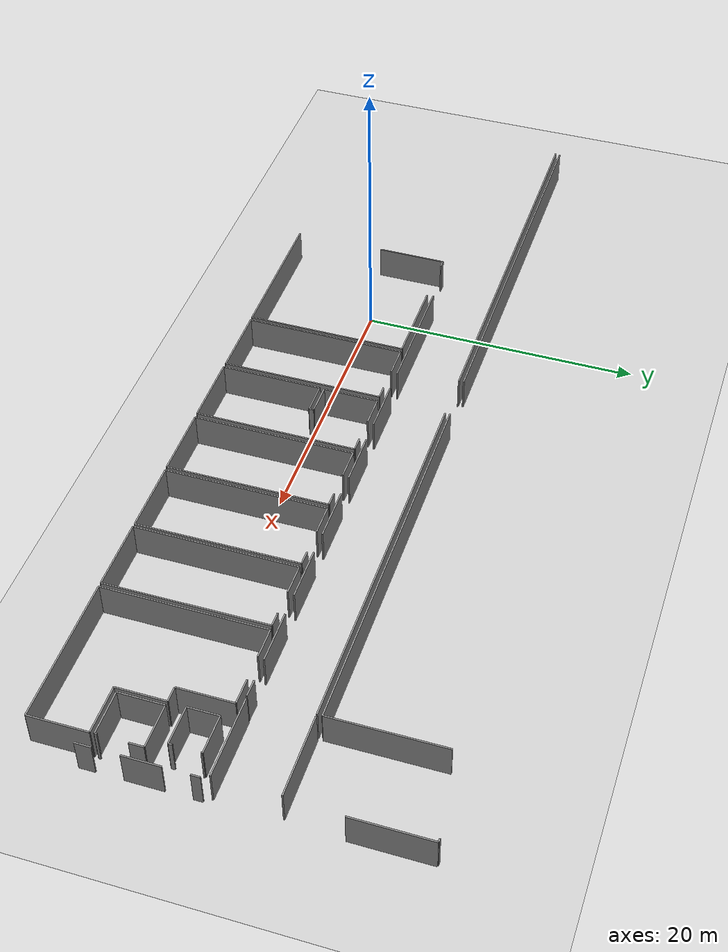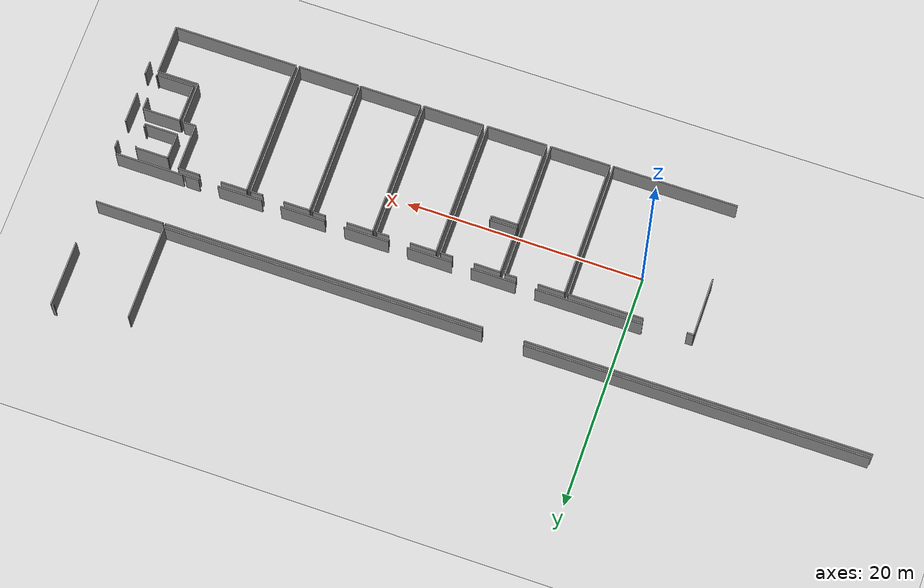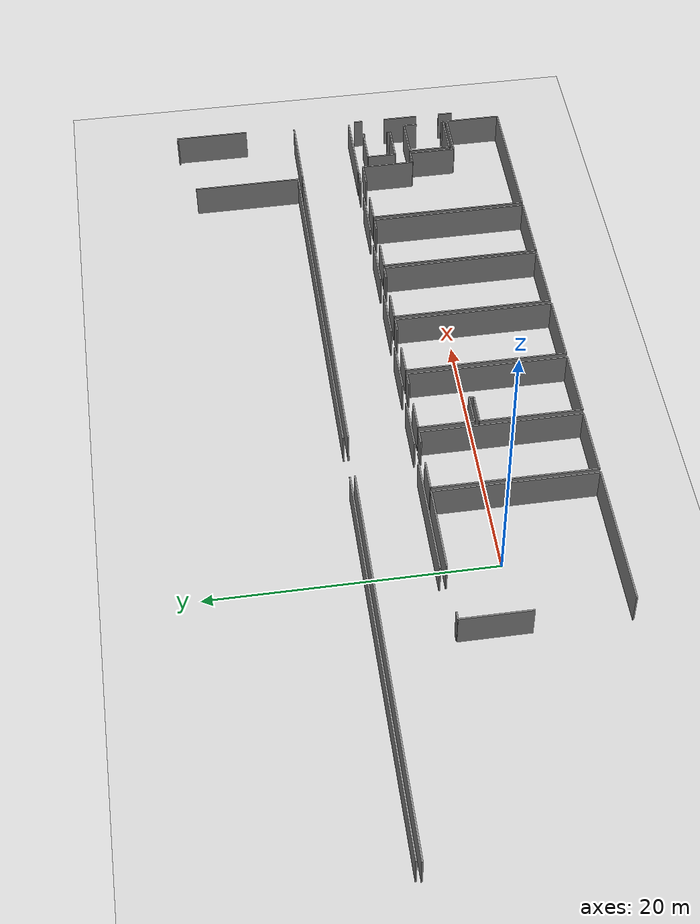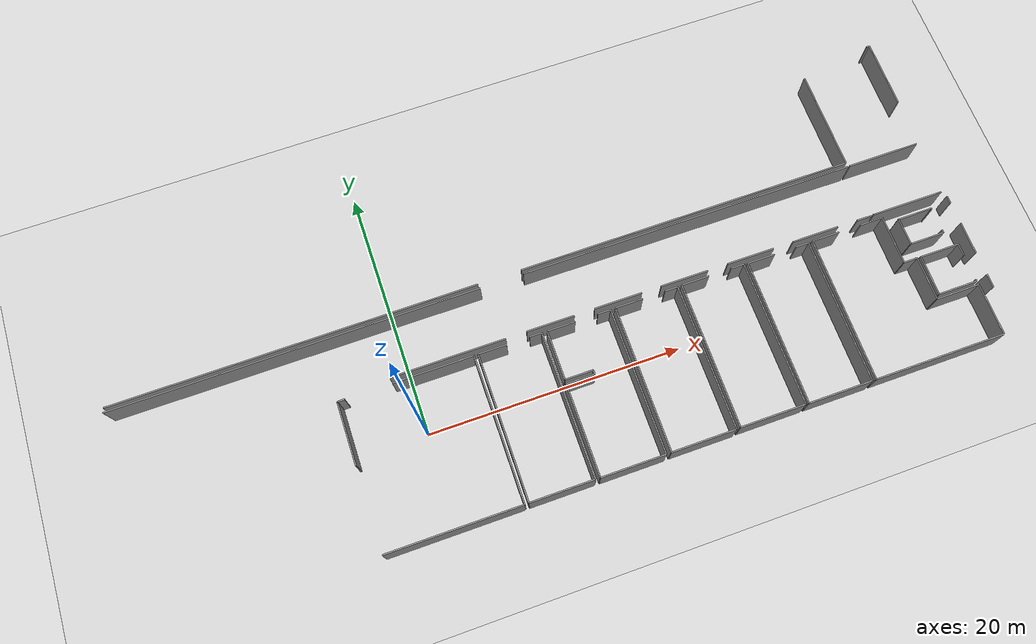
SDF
<sdf version="1.6">
 <world name="default">
  <model name="ground_plane">
   <static>1</static>
   <link name="link">
    <collision name="collision">
     <geometry><plane><normal>0 0 1</normal><size>100 100</size></plane></geometry>
     <surface><friction><ode><mu>100</mu><mu2>50</mu2></ode></friction></surface>
    </collision>
    <visual name="visual">
     <cast_shadows>0</cast_shadows>
     <geometry><plane><normal>0 0 1</normal><size>100 100</size></plane></geometry>
     <material>
      <script><uri>file://media/materials/scripts/gazebo.material</uri><name>Gazebo/Grey</name></script>
     </material>
    </visual>
   </link>
  </model>
  <model name="50037764_PLAN1">
   <static>1</static>
   <link name="Wall_271">
    <collision name="Wall_271_Collision">
     <geometry><box><size>26.9762062128 0.1 2.5</size></box></geometry>
     <pose>13.4881031064 0 1.25 0 0 0</pose>
    </collision>
    <visual name="Wall_271_Visual">
     <pose>13.4881031064 0 1.25 0 0 0</pose>
     <geometry><box><size>26.9762062128 0.1 2.5</size></box></geometry>
     <material>
      <script><uri>file://media/materials/scripts/gazebo.material</uri><name>Gazebo/Grey</name></script>
      <ambient>1 1 1 1</ambient>
     </material>
    </visual>
    <pose>172.627230668 -11.983273171 0 0 0 3.14159265359</pose>
   </link>
   <link name="Wall_272">
    <collision name="Wall_272_Collision">
     <geometry><box><size>28.8553053028 0.1 2.5</size></box></geometry>
     <pose>14.4276526514 0 1.25 0 0 0</pose>
    </collision>
    <visual name="Wall_272_Visual">
     <pose>14.4276526514 0 1.25 0 0 0</pose>
     <geometry><box><size>28.8553053028 0.1 2.5</size></box></geometry>
     <material>
      <script><uri>file://media/materials/scripts/gazebo.material</uri><name>Gazebo/Grey</name></script>
      <ambient>1 1 1 1</ambient>
     </material>
    </visual>
    <pose>142.20219635 -11.983273171 0 0 0 3.14159265359</pose>
   </link>
   <link name="Wall_275">
    <collision name="Wall_275_Collision">
     <geometry><box><size>9.0111342722 0.1 2.5</size></box></geometry>
     <pose>4.5055671361 0 1.25 0 0 0</pose>
    </collision>
    <visual name="Wall_275_Visual">
     <pose>4.5055671361 0 1.25 0 0 0</pose>
     <geometry><box><size>9.0111342722 0.1 2.5</size></box></geometry>
     <material>
      <script><uri>file://media/materials/scripts/gazebo.material</uri><name>Gazebo/Grey</name></script>
      <ambient>1 1 1 1</ambient>
     </material>
    </visual>
    <pose>133.75819818 -16.4093243175 0 0 0 0.0</pose>
   </link>
   <link name="Wall_276">
    <collision name="Wall_276_Collision">
     <geometry><box><size>3.78107682139 0.1 2.5</size></box></geometry>
     <pose>1.8905384107 0 1.25 0 0 0</pose>
    </collision>
    <visual name="Wall_276_Visual">
     <pose>1.8905384107 0 1.25 0 0 0</pose>
     <geometry><box><size>3.78107682139 0.1 2.5</size></box></geometry>
     <material>
      <script><uri>file://media/materials/scripts/gazebo.material</uri><name>Gazebo/Grey</name></script>
      <ambient>1 1 1 1</ambient>
     </material>
    </visual>
    <pose>144.399816971 -16.4093243175 0 0 0 0.0</pose>
   </link>
   <link name="Wall_277">
    <collision name="Wall_277_Collision">
     <geometry><box><size>3.78463572119 0.1 2.5</size></box></geometry>
     <pose>1.89231786059 0 1.25 0 0 0</pose>
    </collision>
    <visual name="Wall_277_Visual">
     <pose>1.89231786059 0 1.25 0 0 0</pose>
     <geometry><box><size>3.78463572119 0.1 2.5</size></box></geometry>
     <material>
      <script><uri>file://media/materials/scripts/gazebo.material</uri><name>Gazebo/Grey</name></script>
      <ambient>1 1 1 1</ambient>
     </material>
    </visual>
    <pose>149.805531547 -16.4093243175 0 0 0 0.0</pose>
   </link>
   <link name="Wall_278">
    <collision name="Wall_278_Collision">
     <geometry><box><size>3.79404138492 0.1 2.5</size></box></geometry>
     <pose>1.89702069246 0 1.25 0 0 0</pose>
    </collision>
    <visual name="Wall_278_Visual">
     <pose>1.89702069246 0 1.25 0 0 0</pose>
     <geometry><box><size>3.79404138492 0.1 2.5</size></box></geometry>
     <material>
      <script><uri>file://media/materials/scripts/gazebo.material</uri><name>Gazebo/Grey</name></script>
      <ambient>1 1 1 1</ambient>
     </material>
    </visual>
    <pose>155.166759876 -16.4093243175 0 0 0 0.0</pose>
   </link>
   <link name="Wall_279">
    <collision name="Wall_279_Collision">
     <geometry><box><size>3.78438151406 0.1 2.5</size></box></geometry>
     <pose>1.89219075703 0 1.25 0 0 0</pose>
    </collision>
    <visual name="Wall_279_Visual">
     <pose>1.89219075703 0 1.25 0 0 0</pose>
     <geometry><box><size>3.78438151406 0.1 2.5</size></box></geometry>
     <material>
      <script><uri>file://media/materials/scripts/gazebo.material</uri><name>Gazebo/Grey</name></script>
      <ambient>1 1 1 1</ambient>
     </material>
    </visual>
    <pose>160.60450455 -16.4093243175 0 0 0 0.0</pose>
   </link>
   <link name="Wall_280">
    <collision name="Wall_280_Collision">
     <geometry><box><size>3.76963750064 0.1 2.5</size></box></geometry>
     <pose>1.88481875032 0 1.25 0 0 0</pose>
    </collision>
    <visual name="Wall_280_Visual">
     <pose>1.88481875032 0 1.25 0 0 0</pose>
     <geometry><box><size>3.76963750064 0.1 2.5</size></box></geometry>
     <material>
      <script><uri>file://media/materials/scripts/gazebo.material</uri><name>Gazebo/Grey</name></script>
      <ambient>1 1 1 1</ambient>
     </material>
    </visual>
    <pose>166.000305049 -16.4093243175 0 0 0 0.0</pose>
   </link>
   <link name="Wall_281">
    <collision name="Wall_281_Collision">
     <geometry><box><size>1.20924421507 0.1 2.5</size></box></geometry>
     <pose>0.604622107536 0 1.25 0 0 0</pose>
    </collision>
    <visual name="Wall_281_Visual">
     <pose>0.604622107536 0 1.25 0 0 0</pose>
     <geometry><box><size>1.20924421507 0.1 2.5</size></box></geometry>
     <material>
      <script><uri>file://media/materials/scripts/gazebo.material</uri><name>Gazebo/Grey</name></script>
      <ambient>1 1 1 1</ambient>
     </material>
    </visual>
    <pose>171.418221567 -16.4093243175 0 0 0 -0.0197198992594</pose>
   </link>
   <link name="Wall_282">
    <collision name="Wall_282_Collision">
     <geometry><box><size>27.0125578321 0.1 2.5</size></box></geometry>
     <pose>13.5062789161 0 1.25 0 0 0</pose>
    </collision>
    <visual name="Wall_282_Visual">
     <pose>13.5062789161 0 1.25 0 0 0</pose>
     <geometry><box><size>27.0125578321 0.1 2.5</size></box></geometry>
     <material>
      <script><uri>file://media/materials/scripts/gazebo.material</uri><name>Gazebo/Grey</name></script>
      <ambient>1 1 1 1</ambient>
     </material>
    </visual>
    <pose>172.609181961 -11.6420255224 0 0 0 3.14159265359</pose>
   </link>
   <link name="Wall_283">
    <collision name="Wall_283_Collision">
     <geometry><box><size>28.7053230973 0.1 2.5</size></box></geometry>
     <pose>14.3526615486 0 1.25 0 0 0</pose>
    </collision>
    <visual name="Wall_283_Visual">
     <pose>14.3526615486 0 1.25 0 0 0</pose>
     <geometry><box><size>28.7053230973 0.1 2.5</size></box></geometry>
     <material>
      <script><uri>file://media/materials/scripts/gazebo.material</uri><name>Gazebo/Grey</name></script>
      <ambient>1 1 1 1</ambient>
     </material>
    </visual>
    <pose>142.137373532 -11.6420255224 0 0 0 3.14159265359</pose>
   </link>
   <link name="Wall_288">
    <collision name="Wall_288_Collision">
     <geometry><box><size>8.01294649496 0.1 2.5</size></box></geometry>
     <pose>4.00647324748 0 1.25 0 0 0</pose>
    </collision>
    <visual name="Wall_288_Visual">
     <pose>4.00647324748 0 1.25 0 0 0</pose>
     <geometry><box><size>8.01294649496 0.1 2.5</size></box></geometry>
     <material>
      <script><uri>file://media/materials/scripts/gazebo.material</uri><name>Gazebo/Grey</name></script>
      <ambient>1 1 1 1</ambient>
     </material>
    </visual>
    <pose>172.572576135 -3.62916264172 0 0 0 -1.56622797559</pose>
   </link>
   <link name="Wall_295">
    <collision name="Wall_295_Collision">
     <geometry><box><size>10.5002796278 0.1 2.5</size></box></geometry>
     <pose>5.25013981392 0 1.25 0 0 0</pose>
    </collision>
    <visual name="Wall_295_Visual">
     <pose>5.25013981392 0 1.25 0 0 0</pose>
     <geometry><box><size>10.5002796278 0.1 2.5</size></box></geometry>
     <material>
      <script><uri>file://media/materials/scripts/gazebo.material</uri><name>Gazebo/Grey</name></script>
      <ambient>1 1 1 1</ambient>
     </material>
    </visual>
    <pose>140.145406477 -28.4517514871 0 0 0 3.14159265359</pose>
   </link>
   <link name="Wall_297">
    <collision name="Wall_297_Collision">
     <geometry><box><size>4.97602826783 0.1 2.5</size></box></geometry>
     <pose>2.48801413392 0 1.25 0 0 0</pose>
    </collision>
    <visual name="Wall_297_Visual">
     <pose>2.48801413392 0 1.25 0 0 0</pose>
     <geometry><box><size>4.97602826783 0.1 2.5</size></box></geometry>
     <material>
      <script><uri>file://media/materials/scripts/gazebo.material</uri><name>Gazebo/Grey</name></script>
      <ambient>1 1 1 1</ambient>
     </material>
    </visual>
    <pose>129.645126849 -21.8377904316 0 0 0 1.57079632679</pose>
   </link>
   <link name="Wall_298">
    <collision name="Wall_298_Collision">
     <geometry><box><size>0.560018302913 0.1 2.5</size></box></geometry>
     <pose>0.280009151457 0 1.25 0 0 0</pose>
    </collision>
    <visual name="Wall_298_Visual">
     <pose>0.280009151457 0 1.25 0 0 0</pose>
     <geometry><box><size>0.560018302913 0.1 2.5</size></box></geometry>
     <material>
      <script><uri>file://media/materials/scripts/gazebo.material</uri><name>Gazebo/Grey</name></script>
      <ambient>1 1 1 1</ambient>
     </material>
    </visual>
    <pose>129.645126849 -16.8617621638 0 0 0 0.0</pose>
   </link>
   <link name="Wall_299">
    <collision name="Wall_299_Collision">
     <geometry><box><size>6.2934058671 0.1 2.5</size></box></geometry>
     <pose>3.14670293355 0 1.25 0 0 0</pose>
    </collision>
    <visual name="Wall_299_Visual">
     <pose>3.14670293355 0 1.25 0 0 0</pose>
     <geometry><box><size>6.2934058671 0.1 2.5</size></box></geometry>
     <material>
      <script><uri>file://media/materials/scripts/gazebo.material</uri><name>Gazebo/Grey</name></script>
      <ambient>1 1 1 1</ambient>
     </material>
    </visual>
    <pose>133.838273425 -16.8617621638 0 0 0 0.0</pose>
   </link>
   <link name="Wall_300">
    <collision name="Wall_300_Collision">
     <geometry><box><size>11.5899974525 0.1 2.5</size></box></geometry>
     <pose>5.79499872627 0 1.25 0 0 0</pose>
    </collision>
    <visual name="Wall_300_Visual">
     <pose>5.79499872627 0 1.25 0 0 0</pose>
     <geometry><box><size>11.5899974525 0.1 2.5</size></box></geometry>
     <material>
      <script><uri>file://media/materials/scripts/gazebo.material</uri><name>Gazebo/Grey</name></script>
      <ambient>1 1 1 1</ambient>
     </material>
    </visual>
    <pose>140.131679292 -16.8617621638 0 0 0 -1.56961192721</pose>
   </link>
   <link name="Wall_301">
    <collision name="Wall_301_Collision">
     <geometry><box><size>5.02567491992 0.1 2.5</size></box></geometry>
     <pose>2.51283745996 0 1.25 0 0 0</pose>
    </collision>
    <visual name="Wall_301_Visual">
     <pose>2.51283745996 0 1.25 0 0 0</pose>
     <geometry><box><size>5.02567491992 0.1 2.5</size></box></geometry>
     <material>
      <script><uri>file://media/materials/scripts/gazebo.material</uri><name>Gazebo/Grey</name></script>
      <ambient>1 1 1 1</ambient>
     </material>
    </visual>
    <pose>145.48324775 -28.4400579592 0 0 0 3.14159265359</pose>
   </link>
   <link name="Wall_302">
    <collision name="Wall_302_Collision">
     <geometry><box><size>11.576211297 0.1 2.5</size></box></geometry>
     <pose>5.78810564848 0 1.25 0 0 0</pose>
    </collision>
    <visual name="Wall_302_Visual">
     <pose>5.78810564848 0 1.25 0 0 0</pose>
     <geometry><box><size>11.576211297 0.1 2.5</size></box></geometry>
     <material>
      <script><uri>file://media/materials/scripts/gazebo.material</uri><name>Gazebo/Grey</name></script>
      <ambient>1 1 1 1</ambient>
     </material>
    </visual>
    <pose>140.45757283 -28.4400579592 0 0 0 1.57079632679</pose>
   </link>
   <link name="Wall_303">
    <collision name="Wall_303_Collision">
     <geometry><box><size>2.22380395546 0.1 2.5</size></box></geometry>
     <pose>1.11190197773 0 1.25 0 0 0</pose>
    </collision>
    <visual name="Wall_303_Visual">
     <pose>1.11190197773 0 1.25 0 0 0</pose>
     <geometry><box><size>2.22380395546 0.1 2.5</size></box></geometry>
     <material>
      <script><uri>file://media/materials/scripts/gazebo.material</uri><name>Gazebo/Grey</name></script>
      <ambient>1 1 1 1</ambient>
     </material>
    </visual>
    <pose>140.45757283 -16.8638466623 0 0 0 0.0</pose>
   </link>
   <link name="Wall_304">
    <collision name="Wall_304_Collision">
     <geometry><box><size>0.977934821292 0.1 2.5</size></box></geometry>
     <pose>0.488967410646 0 1.25 0 0 0</pose>
    </collision>
    <visual name="Wall_304_Visual">
     <pose>0.488967410646 0 1.25 0 0 0</pose>
     <geometry><box><size>0.977934821292 0.1 2.5</size></box></geometry>
     <material>
      <script><uri>file://media/materials/scripts/gazebo.material</uri><name>Gazebo/Grey</name></script>
      <ambient>1 1 1 1</ambient>
     </material>
    </visual>
    <pose>144.47074076 -16.8638466623 0 0 0 0.0</pose>
   </link>
   <link name="Wall_305">
    <collision name="Wall_305_Collision">
     <geometry><box><size>11.5762629215 0.1 2.5</size></box></geometry>
     <pose>5.78813146073 0 1.25 0 0 0</pose>
    </collision>
    <visual name="Wall_305_Visual">
     <pose>5.78813146073 0 1.25 0 0 0</pose>
     <geometry><box><size>11.5762629215 0.1 2.5</size></box></geometry>
     <material>
      <script><uri>file://media/materials/scripts/gazebo.material</uri><name>Gazebo/Grey</name></script>
      <ambient>1 1 1 1</ambient>
     </material>
    </visual>
    <pose>145.448675581 -16.8638466623 0 0 0 -1.56780985171</pose>
   </link>
   <link name="Wall_306">
    <collision name="Wall_306_Collision">
     <geometry><box><size>5.05440032539 0.1 2.5</size></box></geometry>
     <pose>2.52720016269 0 1.25 0 0 0</pose>
    </collision>
    <visual name="Wall_306_Visual">
     <pose>2.52720016269 0 1.25 0 0 0</pose>
     <geometry><box><size>5.05440032539 0.1 2.5</size></box></geometry>
     <material>
      <script><uri>file://media/materials/scripts/gazebo.material</uri><name>Gazebo/Grey</name></script>
      <ambient>1 1 1 1</ambient>
     </material>
    </visual>
    <pose>150.898876404 -28.4568356297 0 0 0 3.14159265359</pose>
   </link>
   <link name="Wall_307">
    <collision name="Wall_307_Collision">
     <geometry><box><size>7.2868473232 0.1 2.5</size></box></geometry>
     <pose>3.6434236616 0 1.25 0 0 0</pose>
    </collision>
    <visual name="Wall_307_Visual">
     <pose>3.6434236616 0 1.25 0 0 0</pose>
     <geometry><box><size>7.2868473232 0.1 2.5</size></box></geometry>
     <material>
      <script><uri>file://media/materials/scripts/gazebo.material</uri><name>Gazebo/Grey</name></script>
      <ambient>1 1 1 1</ambient>
     </material>
    </visual>
    <pose>145.844476079 -28.4568356297 0 0 0 1.57079632679</pose>
   </link>
   <link name="Wall_308">
    <collision name="Wall_308_Collision">
     <geometry><box><size>2.23854796889 0.1 2.5</size></box></geometry>
     <pose>1.11927398444 0 1.25 0 0 0</pose>
    </collision>
    <visual name="Wall_308_Visual">
     <pose>1.11927398444 0 1.25 0 0 0</pose>
     <geometry><box><size>2.23854796889 0.1 2.5</size></box></geometry>
     <material>
      <script><uri>file://media/materials/scripts/gazebo.material</uri><name>Gazebo/Grey</name></script>
      <ambient>1 1 1 1</ambient>
     </material>
    </visual>
    <pose>145.844476079 -21.1699883065 0 0 0 0.0</pose>
   </link>
   <link name="Wall_309">
    <collision name="Wall_309_Collision">
     <geometry><box><size>0.33402816615 0.1 2.5</size></box></geometry>
     <pose>0.167014083075 0 1.25 0 0 0</pose>
    </collision>
    <visual name="Wall_309_Visual">
     <pose>0.167014083075 0 1.25 0 0 0</pose>
     <geometry><box><size>0.33402816615 0.1 2.5</size></box></geometry>
     <material>
      <script><uri>file://media/materials/scripts/gazebo.material</uri><name>Gazebo/Grey</name></script>
      <ambient>1 1 1 1</ambient>
     </material>
    </visual>
    <pose>148.083024048 -21.1699883065 0 0 0 1.57079632679</pose>
   </link>
   <link name="Wall_310">
    <collision name="Wall_310_Collision">
     <geometry><box><size>2.21897402003 0.1 2.5</size></box></geometry>
     <pose>1.10948701002 0 1.25 0 0 0</pose>
    </collision>
    <visual name="Wall_310_Visual">
     <pose>1.10948701002 0 1.25 0 0 0</pose>
     <geometry><box><size>2.21897402003 0.1 2.5</size></box></geometry>
     <material>
      <script><uri>file://media/materials/scripts/gazebo.material</uri><name>Gazebo/Grey</name></script>
      <ambient>1 1 1 1</ambient>
     </material>
    </visual>
    <pose>148.083024048 -20.8359601403 0 0 0 3.14159265359</pose>
   </link>
   <link name="Wall_311">
    <collision name="Wall_311_Collision">
     <geometry><box><size>3.95983527378 0.1 2.5</size></box></geometry>
     <pose>1.97991763689 0 1.25 0 0 0</pose>
    </collision>
    <visual name="Wall_311_Visual">
     <pose>1.97991763689 0 1.25 0 0 0</pose>
     <geometry><box><size>3.95983527378 0.1 2.5</size></box></geometry>
     <material>
      <script><uri>file://media/materials/scripts/gazebo.material</uri><name>Gazebo/Grey</name></script>
      <ambient>1 1 1 1</ambient>
     </material>
    </visual>
    <pose>145.864050028 -20.8359601403 0 0 0 1.57079632679</pose>
   </link>
   <link name="Wall_312">
    <collision name="Wall_312_Collision">
     <geometry><box><size>2.20982256342 0.1 2.5</size></box></geometry>
     <pose>1.10491128171 0 1.25 0 0 0</pose>
    </collision>
    <visual name="Wall_312_Visual">
     <pose>1.10491128171 0 1.25 0 0 0</pose>
     <geometry><box><size>2.20982256342 0.1 2.5</size></box></geometry>
     <material>
      <script><uri>file://media/materials/scripts/gazebo.material</uri><name>Gazebo/Grey</name></script>
      <ambient>1 1 1 1</ambient>
     </material>
    </visual>
    <pose>145.864050028 -16.8761248665 0 0 0 0.0</pose>
   </link>
   <link name="Wall_313">
    <collision name="Wall_313_Collision">
     <geometry><box><size>1.02216686156 0.1 2.5</size></box></geometry>
     <pose>0.511083430779 0 1.25 0 0 0</pose>
    </collision>
    <visual name="Wall_313_Visual">
     <pose>0.511083430779 0 1.25 0 0 0</pose>
     <geometry><box><size>1.02216686156 0.1 2.5</size></box></geometry>
     <material>
      <script><uri>file://media/materials/scripts/gazebo.material</uri><name>Gazebo/Grey</name></script>
      <ambient>1 1 1 1</ambient>
     </material>
    </visual>
    <pose>149.888657278 -16.8761248665 0 0 0 0.0</pose>
   </link>
   <link name="Wall_314">
    <collision name="Wall_314_Collision">
     <geometry><box><size>11.5807169263 0.1 2.5</size></box></geometry>
     <pose>5.79035846316 0 1.25 0 0 0</pose>
    </collision>
    <visual name="Wall_314_Visual">
     <pose>5.79035846316 0 1.25 0 0 0</pose>
     <geometry><box><size>11.5807169263 0.1 2.5</size></box></geometry>
     <material>
      <script><uri>file://media/materials/scripts/gazebo.material</uri><name>Gazebo/Grey</name></script>
      <ambient>1 1 1 1</ambient>
     </material>
    </visual>
    <pose>150.91082414 -16.8761248665 0 0 0 -1.57182801915</pose>
   </link>
   <link name="Wall_315">
    <collision name="Wall_315_Collision">
     <geometry><box><size>5.07244903147 0.1 2.5</size></box></geometry>
     <pose>2.53622451574 0 1.25 0 0 0</pose>
    </collision>
    <visual name="Wall_315_Visual">
     <pose>2.53622451574 0 1.25 0 0 0</pose>
     <geometry><box><size>5.07244903147 0.1 2.5</size></box></geometry>
     <material>
      <script><uri>file://media/materials/scripts/gazebo.material</uri><name>Gazebo/Grey</name></script>
      <ambient>1 1 1 1</ambient>
     </material>
    </visual>
    <pose>156.36661752 -28.4438710661 0 0 0 3.14159265359</pose>
   </link>
   <link name="Wall_316">
    <collision name="Wall_316_Collision">
     <geometry><box><size>11.5821089023 0.1 2.5</size></box></geometry>
     <pose>5.79105445117 0 1.25 0 0 0</pose>
    </collision>
    <visual name="Wall_316_Visual">
     <pose>5.79105445117 0 1.25 0 0 0</pose>
     <geometry><box><size>11.5821089023 0.1 2.5</size></box></geometry>
     <material>
      <script><uri>file://media/materials/scripts/gazebo.material</uri><name>Gazebo/Grey</name></script>
      <ambient>1 1 1 1</ambient>
     </material>
    </visual>
    <pose>151.294168488 -28.4438710661 0 0 0 1.57079632679</pose>
   </link>
   <link name="Wall_317">
    <collision name="Wall_317_Collision">
     <geometry><box><size>2.19279068585 0.1 2.5</size></box></geometry>
     <pose>1.09639534293 0 1.25 0 0 0</pose>
    </collision>
    <visual name="Wall_317_Visual">
     <pose>1.09639534293 0 1.25 0 0 0</pose>
     <geometry><box><size>2.19279068585 0.1 2.5</size></box></geometry>
     <material>
      <script><uri>file://media/materials/scripts/gazebo.material</uri><name>Gazebo/Grey</name></script>
      <ambient>1 1 1 1</ambient>
     </material>
    </visual>
    <pose>151.294168488 -16.8617621638 0 0 0 0.0</pose>
   </link>
   <link name="Wall_318">
    <collision name="Wall_318_Collision">
     <geometry><box><size>1.04657074584 0.1 2.5</size></box></geometry>
     <pose>0.523285372922 0 1.25 0 0 0</pose>
    </collision>
    <visual name="Wall_318_Visual">
     <pose>0.523285372922 0 1.25 0 0 0</pose>
     <geometry><box><size>1.04657074584 0.1 2.5</size></box></geometry>
     <material>
      <script><uri>file://media/materials/scripts/gazebo.material</uri><name>Gazebo/Grey</name></script>
      <ambient>1 1 1 1</ambient>
     </material>
    </visual>
    <pose>155.291067162 -16.8617621638 0 0 0 0.0</pose>
   </link>
   <link name="Wall_319">
    <collision name="Wall_319_Collision">
     <geometry><box><size>11.5821451572 0.1 2.5</size></box></geometry>
     <pose>5.79107257862 0 1.25 0 0 0</pose>
    </collision>
    <visual name="Wall_319_Visual">
     <pose>5.79107257862 0 1.25 0 0 0</pose>
     <geometry><box><size>11.5821451572 0.1 2.5</size></box></geometry>
     <material>
      <script><uri>file://media/materials/scripts/gazebo.material</uri><name>Gazebo/Grey</name></script>
      <ambient>1 1 1 1</ambient>
     </material>
    </visual>
    <pose>156.337637907 -16.8617621638 0 0 0 -1.56829423047</pose>
   </link>
   <link name="Wall_320">
    <collision name="Wall_320_Collision">
     <geometry><box><size>5.16192994052 0.1 2.5</size></box></geometry>
     <pose>2.58096497026 0 1.25 0 0 0</pose>
    </collision>
    <visual name="Wall_320_Visual">
     <pose>2.58096497026 0 1.25 0 0 0</pose>
     <geometry><box><size>5.16192994052 0.1 2.5</size></box></geometry>
     <material>
      <script><uri>file://media/materials/scripts/gazebo.material</uri><name>Gazebo/Grey</name></script>
      <ambient>1 1 1 1</ambient>
     </material>
    </visual>
    <pose>161.831562357 -28.4146372464 0 0 0 3.14159265359</pose>
   </link>
   <link name="Wall_321">
    <collision name="Wall_321_Collision">
     <geometry><box><size>11.5781432711 0.1 2.5</size></box></geometry>
     <pose>5.78907163557 0 1.25 0 0 0</pose>
    </collision>
    <visual name="Wall_321_Visual">
     <pose>5.78907163557 0 1.25 0 0 0</pose>
     <geometry><box><size>11.5781432711 0.1 2.5</size></box></geometry>
     <material>
      <script><uri>file://media/materials/scripts/gazebo.material</uri><name>Gazebo/Grey</name></script>
      <ambient>1 1 1 1</ambient>
     </material>
    </visual>
    <pose>156.669632416 -28.4146372464 0 0 0 1.57079632679</pose>
   </link>
   <link name="Wall_322">
    <collision name="Wall_322_Collision">
     <geometry><box><size>2.2014337282 0.1 2.5</size></box></geometry>
     <pose>1.1007168641 0 1.25 0 0 0</pose>
    </collision>
    <visual name="Wall_322_Visual">
     <pose>1.1007168641 0 1.25 0 0 0</pose>
     <geometry><box><size>2.2014337282 0.1 2.5</size></box></geometry>
     <material>
      <script><uri>file://media/materials/scripts/gazebo.material</uri><name>Gazebo/Grey</name></script>
      <ambient>1 1 1 1</ambient>
     </material>
    </visual>
    <pose>156.669632416 -16.8364939753 0 0 0 0.0</pose>
   </link>
   <link name="Wall_323">
    <collision name="Wall_323_Collision">
     <geometry><box><size>1.06156896639 0.1 2.5</size></box></geometry>
     <pose>0.530784483197 0 1.25 0 0 0</pose>
    </collision>
    <visual name="Wall_323_Visual">
     <pose>0.530784483197 0 1.25 0 0 0</pose>
     <geometry><box><size>1.06156896639 0.1 2.5</size></box></geometry>
     <material>
      <script><uri>file://media/materials/scripts/gazebo.material</uri><name>Gazebo/Grey</name></script>
      <ambient>1 1 1 1</ambient>
     </material>
    </visual>
    <pose>160.70364533 -16.8364939753 0 0 0 0.0</pose>
   </link>
   <link name="Wall_324">
    <collision name="Wall_324_Collision">
     <geometry><box><size>11.578333372 0.1 2.5</size></box></geometry>
     <pose>5.78916668598 0 1.25 0 0 0</pose>
    </collision>
    <visual name="Wall_324_Visual">
     <pose>5.78916668598 0 1.25 0 0 0</pose>
     <geometry><box><size>11.578333372 0.1 2.5</size></box></geometry>
     <material>
      <script><uri>file://media/materials/scripts/gazebo.material</uri><name>Gazebo/Grey</name></script>
      <ambient>1 1 1 1</ambient>
     </material>
    </visual>
    <pose>161.765214297 -16.8364939753 0 0 0 -1.56506593181</pose>
   </link>
   <link name="Wall_325">
    <collision name="Wall_325_Collision">
     <geometry><box><size>5.08414255936 0.1 2.5</size></box></geometry>
     <pose>2.54207127968 0 1.25 0 0 0</pose>
    </collision>
    <visual name="Wall_325_Visual">
     <pose>2.54207127968 0 1.25 0 0 0</pose>
     <geometry><box><size>5.08414255936 0.1 2.5</size></box></geometry>
     <material>
      <script><uri>file://media/materials/scripts/gazebo.material</uri><name>Gazebo/Grey</name></script>
      <ambient>1 1 1 1</ambient>
     </material>
    </visual>
    <pose>167.15084651 -28.4253139458 0 0 0 3.14159265359</pose>
   </link>
   <link name="Wall_326">
    <collision name="Wall_326_Collision">
     <geometry><box><size>11.5525446134 0.1 2.5</size></box></geometry>
     <pose>5.77627230668 0 1.25 0 0 0</pose>
    </collision>
    <visual name="Wall_326_Visual">
     <pose>5.77627230668 0 1.25 0 0 0</pose>
     <geometry><box><size>11.5525446134 0.1 2.5</size></box></geometry>
     <material>
      <script><uri>file://media/materials/scripts/gazebo.material</uri><name>Gazebo/Grey</name></script>
      <ambient>1 1 1 1</ambient>
     </material>
    </visual>
    <pose>162.06670395 -28.4253139458 0 0 0 1.57079632679</pose>
   </link>
   <link name="Wall_327">
    <collision name="Wall_327_Collision">
     <geometry><box><size>2.21897402003 0.1 2.5</size></box></geometry>
     <pose>1.10948701002 0 1.25 0 0 0</pose>
    </collision>
    <visual name="Wall_327_Visual">
     <pose>1.10948701002 0 1.25 0 0 0</pose>
     <geometry><box><size>2.21897402003 0.1 2.5</size></box></geometry>
     <material>
      <script><uri>file://media/materials/scripts/gazebo.material</uri><name>Gazebo/Grey</name></script>
      <ambient>1 1 1 1</ambient>
     </material>
    </visual>
    <pose>162.06670395 -16.8727693325 0 0 0 0.0</pose>
   </link>
   <link name="Wall_328">
    <collision name="Wall_328_Collision">
     <geometry><box><size>1.03640246072 0.1 2.5</size></box></geometry>
     <pose>0.518201230362 0 1.25 0 0 0</pose>
    </collision>
    <visual name="Wall_328_Visual">
     <pose>0.518201230362 0 1.25 0 0 0</pose>
     <geometry><box><size>1.03640246072 0.1 2.5</size></box></geometry>
     <material>
      <script><uri>file://media/materials/scripts/gazebo.material</uri><name>Gazebo/Grey</name></script>
      <ambient>1 1 1 1</ambient>
     </material>
    </visual>
    <pose>166.075041944 -16.8727693325 0 0 0 0.0</pose>
   </link>
   <link name="Wall_329">
    <collision name="Wall_329_Collision">
     <geometry><box><size>11.5526118073 0.1 2.5</size></box></geometry>
     <pose>5.77630590363 0 1.25 0 0 0</pose>
    </collision>
    <visual name="Wall_329_Visual">
     <pose>5.77630590363 0 1.25 0 0 0</pose>
     <geometry><box><size>11.5526118073 0.1 2.5</size></box></geometry>
     <material>
      <script><uri>file://media/materials/scripts/gazebo.material</uri><name>Gazebo/Grey</name></script>
      <ambient>1 1 1 1</ambient>
     </material>
    </visual>
    <pose>167.111444405 -16.8727693325 0 0 0 -1.56738565379</pose>
   </link>
   <link name="Wall_330">
    <collision name="Wall_330_Collision">
     <geometry><box><size>10.4519802735 0.1 2.5</size></box></geometry>
     <pose>5.22599013676 0 1.25 0 0 0</pose>
    </collision>
    <visual name="Wall_330_Visual">
     <pose>5.22599013676 0 1.25 0 0 0</pose>
     <geometry><box><size>10.4519802735 0.1 2.5</size></box></geometry>
     <material>
      <script><uri>file://media/materials/scripts/gazebo.material</uri><name>Gazebo/Grey</name></script>
      <ambient>1 1 1 1</ambient>
     </material>
    </visual>
    <pose>177.904570644 -28.4260765672 0 0 0 3.14159265359</pose>
   </link>
   <link name="Wall_331">
    <collision name="Wall_331_Collision">
     <geometry><box><size>11.5807361838 0.1 2.5</size></box></geometry>
     <pose>5.79036809192 0 1.25 0 0 0</pose>
    </collision>
    <visual name="Wall_331_Visual">
     <pose>5.79036809192 0 1.25 0 0 0</pose>
     <geometry><box><size>11.5807361838 0.1 2.5</size></box></geometry>
     <material>
      <script><uri>file://media/materials/scripts/gazebo.material</uri><name>Gazebo/Grey</name></script>
      <ambient>1 1 1 1</ambient>
     </material>
    </visual>
    <pose>167.452590371 -28.4260765672 0 0 0 1.57079632679</pose>
   </link>
   <link name="Wall_332">
    <collision name="Wall_332_Collision">
     <geometry><box><size>2.21821139865 0.1 2.5</size></box></geometry>
     <pose>1.10910569932 0 1.25 0 0 0</pose>
    </collision>
    <visual name="Wall_332_Visual">
     <pose>1.10910569932 0 1.25 0 0 0</pose>
     <geometry><box><size>2.21821139865 0.1 2.5</size></box></geometry>
     <material>
      <script><uri>file://media/materials/scripts/gazebo.material</uri><name>Gazebo/Grey</name></script>
      <ambient>1 1 1 1</ambient>
     </material>
    </visual>
    <pose>167.452590371 -16.8453403833 0 0 0 0.0</pose>
   </link>
   <link name="Wall_333">
    <collision name="Wall_333_Collision">
     <geometry><box><size>1.83130814988 0.1 2.5</size></box></geometry>
     <pose>0.91565407494 0 1.25 0 0 0</pose>
    </collision>
    <visual name="Wall_333_Visual">
     <pose>0.91565407494 0 1.25 0 0 0</pose>
     <geometry><box><size>1.83130814988 0.1 2.5</size></box></geometry>
     <material>
      <script><uri>file://media/materials/scripts/gazebo.material</uri><name>Gazebo/Grey</name></script>
      <ambient>1 1 1 1</ambient>
     </material>
    </visual>
    <pose>171.497025777 -16.8453403833 0 0 0 0.0</pose>
   </link>
   <link name="Wall_334">
    <collision name="Wall_334_Collision">
     <geometry><box><size>3.92427169658 0.1 2.5</size></box></geometry>
     <pose>1.96213584829 0 1.25 0 0 0</pose>
    </collision>
    <visual name="Wall_334_Visual">
     <pose>1.96213584829 0 1.25 0 0 0</pose>
     <geometry><box><size>3.92427169658 0.1 2.5</size></box></geometry>
     <material>
      <script><uri>file://media/materials/scripts/gazebo.material</uri><name>Gazebo/Grey</name></script>
      <ambient>1 1 1 1</ambient>
     </material>
    </visual>
    <pose>173.328333926 -16.8453403833 0 0 0 -1.57079632679</pose>
   </link>
   <link name="Wall_335">
    <collision name="Wall_335_Collision">
     <geometry><box><size>1.1007168641 0.1 2.5</size></box></geometry>
     <pose>0.55035843205 0 1.25 0 0 0</pose>
    </collision>
    <visual name="Wall_335_Visual">
     <pose>0.55035843205 0 1.25 0 0 0</pose>
     <geometry><box><size>1.1007168641 0.1 2.5</size></box></geometry>
     <material>
      <script><uri>file://media/materials/scripts/gazebo.material</uri><name>Gazebo/Grey</name></script>
      <ambient>1 1 1 1</ambient>
     </material>
    </visual>
    <pose>173.328333926 -20.7696120799 0 0 0 0.0</pose>
   </link>
   <link name="Wall_336">
    <collision name="Wall_336_Collision">
     <geometry><box><size>3.49839849509 0.1 2.5</size></box></geometry>
     <pose>1.74919924755 0 1.25 0 0 0</pose>
    </collision>
    <visual name="Wall_336_Visual">
     <pose>1.74919924755 0 1.25 0 0 0</pose>
     <geometry><box><size>3.49839849509 0.1 2.5</size></box></geometry>
     <material>
      <script><uri>file://media/materials/scripts/gazebo.material</uri><name>Gazebo/Grey</name></script>
      <ambient>1 1 1 1</ambient>
     </material>
    </visual>
    <pose>174.429050791 -20.7696120799 0 0 0 -1.57079632679</pose>
   </link>
   <link name="Wall_337">
    <collision name="Wall_337_Collision">
     <geometry><box><size>3.46306370431 0.1 2.5</size></box></geometry>
     <pose>1.73153185215 0 1.25 0 0 0</pose>
    </collision>
    <visual name="Wall_337_Visual">
     <pose>1.73153185215 0 1.25 0 0 0</pose>
     <geometry><box><size>3.46306370431 0.1 2.5</size></box></geometry>
     <material>
      <script><uri>file://media/materials/scripts/gazebo.material</uri><name>Gazebo/Grey</name></script>
      <ambient>1 1 1 1</ambient>
     </material>
    </visual>
    <pose>174.429050791 -24.268010575 0 0 0 0.0</pose>
   </link>
   <link name="Wall_338">
    <collision name="Wall_338_Collision">
     <geometry><box><size>4.15808464932 0.1 2.5</size></box></geometry>
     <pose>2.07904232466 0 1.25 0 0 0</pose>
    </collision>
    <visual name="Wall_338_Visual">
     <pose>2.07904232466 0 1.25 0 0 0</pose>
     <geometry><box><size>4.15808464932 0.1 2.5</size></box></geometry>
     <material>
      <script><uri>file://media/materials/scripts/gazebo.material</uri><name>Gazebo/Grey</name></script>
      <ambient>1 1 1 1</ambient>
     </material>
    </visual>
    <pose>177.892114495 -24.268010575 0 0 0 -1.56780067641</pose>
   </link>
   <link name="Wall_339">
    <collision name="Wall_339_Collision">
     <geometry><box><size>5.77914484722 0.1 2.5</size></box></geometry>
     <pose>2.88957242361 0 1.25 0 0 0</pose>
    </collision>
    <visual name="Wall_339_Visual">
     <pose>2.88957242361 0 1.25 0 0 0</pose>
     <geometry><box><size>5.77914484722 0.1 2.5</size></box></geometry>
     <material>
      <script><uri>file://media/materials/scripts/gazebo.material</uri><name>Gazebo/Grey</name></script>
      <ambient>1 1 1 1</ambient>
     </material>
    </visual>
    <pose>178.577965326 -16.3947836697 0 0 0 3.14159265359</pose>
   </link>
   <link name="Wall_340">
    <collision name="Wall_340_Collision">
     <geometry><box><size>5.77914901406 0.1 2.5</size></box></geometry>
     <pose>2.88957450703 0 1.25 0 0 0</pose>
    </collision>
    <visual name="Wall_340_Visual">
     <pose>2.88957450703 0 1.25 0 0 0</pose>
     <geometry><box><size>5.77914901406 0.1 2.5</size></box></geometry>
     <material>
      <script><uri>file://media/materials/scripts/gazebo.material</uri><name>Gazebo/Grey</name></script>
      <ambient>1 1 1 1</ambient>
     </material>
    </visual>
    <pose>172.798820479 -11.983273171 0 0 0 0.0012008439728</pose>
   </link>
   <link name="Wall_352">
    <collision name="Wall_352_Collision">
     <geometry><box><size>5.49509380243 0.1 2.5</size></box></geometry>
     <pose>2.74754690122 0 1.25 0 0 0</pose>
    </collision>
    <visual name="Wall_352_Visual">
     <pose>2.74754690122 0 1.25 0 0 0</pose>
     <geometry><box><size>5.49509380243 0.1 2.5</size></box></geometry>
     <material>
      <script><uri>file://media/materials/scripts/gazebo.material</uri><name>Gazebo/Grey</name></script>
      <ambient>1 1 1 1</ambient>
     </material>
    </visual>
    <pose>178.795312421 -8.12471401698 0 0 0 1.57079632679</pose>
   </link>
   <link name="Wall_353">
    <collision name="Wall_353_Collision">
     <geometry><box><size>0.247597742641 0.1 2.5</size></box></geometry>
     <pose>0.12379887132 0 1.25 0 0 0</pose>
    </collision>
    <visual name="Wall_353_Visual">
     <pose>0.12379887132 0 1.25 0 0 0</pose>
     <geometry><box><size>0.247597742641 0.1 2.5</size></box></geometry>
     <material>
      <script><uri>file://media/materials/scripts/gazebo.material</uri><name>Gazebo/Grey</name></script>
      <ambient>1 1 1 1</ambient>
     </material>
    </visual>
    <pose>178.795312421 -2.62962021455 0 0 0 3.14159265359</pose>
   </link>
   <link name="Wall_356">
    <collision name="Wall_356_Collision">
     <geometry><box><size>1.10986832071 0.1 2.5</size></box></geometry>
     <pose>0.554934160354 0 1.25 0 0 0</pose>
    </collision>
    <visual name="Wall_356_Visual">
     <pose>0.554934160354 0 1.25 0 0 0</pose>
     <geometry><box><size>1.10986832071 0.1 2.5</size></box></geometry>
     <material>
      <script><uri>file://media/materials/scripts/gazebo.material</uri><name>Gazebo/Grey</name></script>
      <ambient>1 1 1 1</ambient>
     </material>
    </visual>
    <pose>178.836748182 -24.8404850272 0 0 0 1.57079632679</pose>
   </link>
   <link name="Wall_357">
    <collision name="Wall_357_Collision">
     <geometry><box><size>2.6185876252 0.1 2.5</size></box></geometry>
     <pose>1.3092938126 0 1.25 0 0 0</pose>
    </collision>
    <visual name="Wall_357_Visual">
     <pose>1.3092938126 0 1.25 0 0 0</pose>
     <geometry><box><size>2.6185876252 0.1 2.5</size></box></geometry>
     <material>
      <script><uri>file://media/materials/scripts/gazebo.material</uri><name>Gazebo/Grey</name></script>
      <ambient>1 1 1 1</ambient>
     </material>
    </visual>
    <pose>178.836748182 -21.9076973918 0 0 0 1.57079632679</pose>
   </link>
   <link name="Wall_358">
    <collision name="Wall_358_Collision">
     <geometry><box><size>0.638009049774 0.1 2.5</size></box></geometry>
     <pose>0.319004524887 0 1.25 0 0 0</pose>
    </collision>
    <visual name="Wall_358_Visual">
     <pose>0.319004524887 0 1.25 0 0 0</pose>
     <geometry><box><size>0.638009049774 0.1 2.5</size></box></geometry>
     <material>
      <script><uri>file://media/materials/scripts/gazebo.material</uri><name>Gazebo/Grey</name></script>
      <ambient>1 1 1 1</ambient>
     </material>
    </visual>
    <pose>178.836748182 -17.5101682851 0 0 0 1.57079632679</pose>
   </link>
   <link name="Wall_362">
    <collision name="Wall_362_Collision">
     <geometry><box><size>0.267425898622 0.1 2.5</size></box></geometry>
     <pose>0.133712949311 0 1.25 0 0 0</pose>
    </collision>
    <visual name="Wall_362_Visual">
     <pose>0.133712949311 0 1.25 0 0 0</pose>
     <geometry><box><size>0.267425898622 0.1 2.5</size></box></geometry>
     <material>
      <script><uri>file://media/materials/scripts/gazebo.material</uri><name>Gazebo/Grey</name></script>
      <ambient>1 1 1 1</ambient>
     </material>
    </visual>
    <pose>177.232955412 -19.5661955361 0 0 0 1.57079632679</pose>
   </link>
   <link name="Wall_363">
    <collision name="Wall_363_Collision">
     <geometry><box><size>0.107021200874 0.1 2.5</size></box></geometry>
     <pose>0.0535106004372 0 1.25 0 0 0</pose>
    </collision>
    <visual name="Wall_363_Visual">
     <pose>0.0535106004372 0 1.25 0 0 0</pose>
     <geometry><box><size>0.107021200874 0.1 2.5</size></box></geometry>
     <material>
      <script><uri>file://media/materials/scripts/gazebo.material</uri><name>Gazebo/Grey</name></script>
      <ambient>1 1 1 1</ambient>
     </material>
    </visual>
    <pose>177.232955412 -17.5045757283 0 0 0 1.57079632679</pose>
   </link>
   <link name="Wall_364">
    <collision name="Wall_364_Collision">
     <geometry><box><size>2.76882403783 0.1 2.5</size></box></geometry>
     <pose>1.38441201891 0 1.25 0 0 0</pose>
    </collision>
    <visual name="Wall_364_Visual">
     <pose>1.38441201891 0 1.25 0 0 0</pose>
     <geometry><box><size>2.76882403783 0.1 2.5</size></box></geometry>
     <material>
      <script><uri>file://media/materials/scripts/gazebo.material</uri><name>Gazebo/Grey</name></script>
      <ambient>1 1 1 1</ambient>
     </material>
    </visual>
    <pose>177.232955412 -17.3975545274 0 0 0 3.14159265359</pose>
   </link>
   <link name="Wall_365">
    <collision name="Wall_365_Collision">
     <geometry><box><size>2.16177741624 0.1 2.5</size></box></geometry>
     <pose>1.08088870812 0 1.25 0 0 0</pose>
    </collision>
    <visual name="Wall_365_Visual">
     <pose>1.08088870812 0 1.25 0 0 0</pose>
     <geometry><box><size>2.16177741624 0.1 2.5</size></box></geometry>
     <material>
      <script><uri>file://media/materials/scripts/gazebo.material</uri><name>Gazebo/Grey</name></script>
      <ambient>1 1 1 1</ambient>
     </material>
    </visual>
    <pose>174.464131374 -17.3975545274 0 0 0 -1.57079632679</pose>
   </link>
   <link name="Wall_366">
    <collision name="Wall_366_Collision">
     <geometry><box><size>2.76883254484 0.1 2.5</size></box></geometry>
     <pose>1.38441627242 0 1.25 0 0 0</pose>
    </collision>
    <visual name="Wall_366_Visual">
     <pose>1.38441627242 0 1.25 0 0 0</pose>
     <geometry><box><size>2.76883254484 0.1 2.5</size></box></geometry>
     <material>
      <script><uri>file://media/materials/scripts/gazebo.material</uri><name>Gazebo/Grey</name></script>
      <ambient>1 1 1 1</ambient>
     </material>
    </visual>
    <pose>174.464131374 -19.5593319437 0 0 0 -0.00247887850683</pose>
   </link>
   <link name="Wall_367">
    <collision name="Wall_367_Collision">
     <geometry><box><size>3.15776094362 0.1 2.5</size></box></geometry>
     <pose>1.57888047181 0 1.25 0 0 0</pose>
    </collision>
    <visual name="Wall_367_Visual">
     <pose>1.57888047181 0 1.25 0 0 0</pose>
     <geometry><box><size>3.15776094362 0.1 2.5</size></box></geometry>
     <material>
      <script><uri>file://media/materials/scripts/gazebo.material</uri><name>Gazebo/Grey</name></script>
      <ambient>1 1 1 1</ambient>
     </material>
    </visual>
    <pose>177.877624689 -23.9731303066 0 0 0 3.14159265359</pose>
   </link>
   <link name="Wall_368">
    <collision name="Wall_368_Collision">
     <geometry><box><size>3.18241903503 0.1 2.5</size></box></geometry>
     <pose>1.59120951751 0 1.25 0 0 0</pose>
    </collision>
    <visual name="Wall_368_Visual">
     <pose>1.59120951751 0 1.25 0 0 0</pose>
     <geometry><box><size>3.18241903503 0.1 2.5</size></box></geometry>
     <material>
      <script><uri>file://media/materials/scripts/gazebo.material</uri><name>Gazebo/Grey</name></script>
      <ambient>1 1 1 1</ambient>
     </material>
    </visual>
    <pose>174.719863745 -23.9731303066 0 0 0 1.57079632679</pose>
   </link>
   <link name="Wall_369">
    <collision name="Wall_369_Collision">
     <geometry><box><size>3.16259087905 0.1 2.5</size></box></geometry>
     <pose>1.58129543952 0 1.25 0 0 0</pose>
    </collision>
    <visual name="Wall_369_Visual">
     <pose>1.58129543952 0 1.25 0 0 0</pose>
     <geometry><box><size>3.16259087905 0.1 2.5</size></box></geometry>
     <material>
      <script><uri>file://media/materials/scripts/gazebo.material</uri><name>Gazebo/Grey</name></script>
      <ambient>1 1 1 1</ambient>
     </material>
    </visual>
    <pose>174.719863745 -20.7907112715 0 0 0 0.0</pose>
   </link>
   <link name="Wall_370">
    <collision name="Wall_370_Collision">
     <geometry><box><size>1.00538919111 0.1 2.5</size></box></geometry>
     <pose>0.502694595556 0 1.25 0 0 0</pose>
    </collision>
    <visual name="Wall_370_Visual">
     <pose>0.502694595556 0 1.25 0 0 0</pose>
     <geometry><box><size>1.00538919111 0.1 2.5</size></box></geometry>
     <material>
      <script><uri>file://media/materials/scripts/gazebo.material</uri><name>Gazebo/Grey</name></script>
      <ambient>1 1 1 1</ambient>
     </material>
    </visual>
    <pose>177.882454624 -20.7907112715 0 0 0 -1.57079632679</pose>
   </link>
   <link name="Wall_371">
    <collision name="Wall_371_Collision">
     <geometry><box><size>0.163780623961 0.1 2.5</size></box></geometry>
     <pose>0.0818903119806 0 1.25 0 0 0</pose>
    </collision>
    <visual name="Wall_371_Visual">
     <pose>0.0818903119806 0 1.25 0 0 0</pose>
     <geometry><box><size>0.163780623961 0.1 2.5</size></box></geometry>
     <material>
      <script><uri>file://media/materials/scripts/gazebo.material</uri><name>Gazebo/Grey</name></script>
      <ambient>1 1 1 1</ambient>
     </material>
    </visual>
    <pose>177.882454624 -23.8094209162 0 0 0 -1.60029087669</pose>
   </link>
   <pose>-135.1 20.8410341146 0 0 0 0</pose>
  </model>
 </world>
</sdf>
